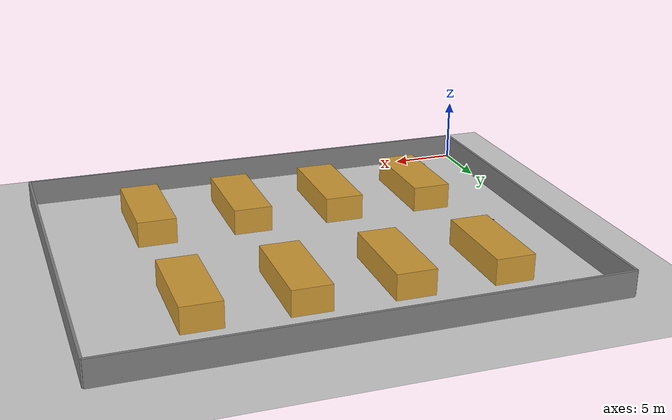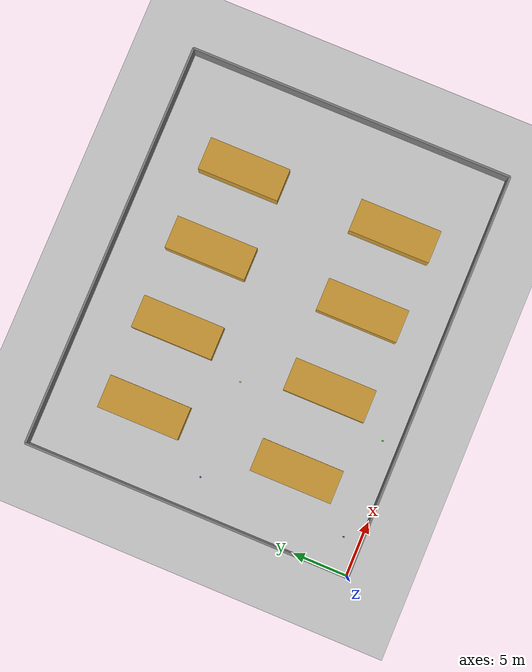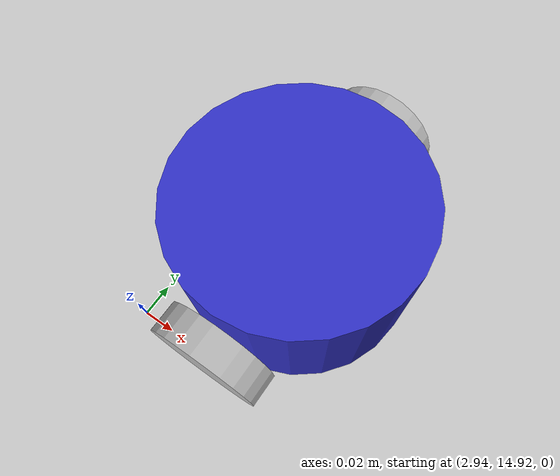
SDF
<?xml version="1.0" ?>
<sdf version="1.8">
  <world name="warehouse">
    <physics name="1ms" type="ignored">
      <max_step_size>0.001</max_step_size>
      <real_time_factor>1.0</real_time_factor>
    </physics>

    <plugin filename="ignition-gazebo-physics-system" name="ignition::gazebo::systems::Physics"/>
    <plugin filename="ignition-gazebo-scene-broadcaster-system" name="ignition::gazebo::systems::SceneBroadcaster"/>
    <plugin filename="ignition-gazebo-user-commands-system" name="ignition::gazebo::systems::UserCommands"/>

    <light type="directional" name="sun">
      <cast_shadows>true</cast_shadows>
      <pose>0 0 10 0 0 0</pose>
      <diffuse>0.8 0.8 0.8 1</diffuse>
      <specular>0.2 0.2 0.2 1</specular>
      <direction>-0.5 0.1 -0.9</direction>
    </light>

    <model name="ground_plane">
      <static>true</static>
      <link name="link">
        <collision name="collision">
          <geometry><plane><normal>0 0 1</normal><size>100 100</size></plane></geometry>
        </collision>
        <visual name="visual">
          <geometry><plane><normal>0 0 1</normal><size>100 100</size></plane></geometry>
          <material>
            <ambient>0.8 0.8 0.8 1</ambient>
            <diffuse>0.8 0.8 0.8 1</diffuse>
          </material>
        </visual>
      </link>
    </model>

    <!-- Warehouse walls (37.5m x 30m) -->
    <model name="wall_north">
      <static>true</static>
      <pose>18.75 30 1 0 0 0</pose>
      <link name="link">
        <collision name="collision"><geometry><box><size>37.5 0.2 2</size></box></geometry></collision>
        <visual name="visual"><geometry><box><size>37.5 0.2 2</size></box></geometry>
          <material><ambient>0.5 0.5 0.5 1</ambient></material></visual>
      </link>
    </model>

    <model name="wall_south">
      <static>true</static>
      <pose>18.75 0 1 0 0 0</pose>
      <link name="link">
        <collision name="collision"><geometry><box><size>37.5 0.2 2</size></box></geometry></collision>
        <visual name="visual"><geometry><box><size>37.5 0.2 2</size></box></geometry>
          <material><ambient>0.5 0.5 0.5 1</ambient></material></visual>
      </link>
    </model>

    <model name="wall_west">
      <static>true</static>
      <pose>0 15 1 0 0 0</pose>
      <link name="link">
        <collision name="collision"><geometry><box><size>0.2 30 2</size></box></geometry></collision>
        <visual name="visual"><geometry><box><size>0.2 30 2</size></box></geometry>
          <material><ambient>0.5 0.5 0.5 1</ambient></material></visual>
      </link>
    </model>

    <model name="wall_east">
      <static>true</static>
      <pose>37.5 15 1 0 0 0</pose>
      <link name="link">
        <collision name="collision"><geometry><box><size>0.2 30 2</size></box></geometry></collision>
        <visual name="visual"><geometry><box><size>0.2 30 2</size></box></geometry>
          <material><ambient>0.5 0.5 0.5 1</ambient></material></visual>
      </link>
    </model>

    <!-- Shelf Row 1 (bottom) y: 4.5 to 10.5 -->
    <model name="shelf_1a"><static>true</static><pose>6.75 7.5 1 0 0 0</pose>
      <link name="link"><collision name="c"><geometry><box><size>3 7.5 2</size></box></geometry></collision>
      <visual name="v"><geometry><box><size>3 7.5 2</size></box></geometry>
        <material><ambient>0.8 0.6 0.2 1</ambient><diffuse>0.8 0.6 0.2 1</diffuse></material></visual></link></model>

    <model name="shelf_1b"><static>true</static><pose>14.25 7.5 1 0 0 0</pose>
      <link name="link"><collision name="c"><geometry><box><size>3 7.5 2</size></box></geometry></collision>
      <visual name="v"><geometry><box><size>3 7.5 2</size></box></geometry>
        <material><ambient>0.8 0.6 0.2 1</ambient><diffuse>0.8 0.6 0.2 1</diffuse></material></visual></link></model>

    <model name="shelf_1c"><static>true</static><pose>21.75 7.5 1 0 0 0</pose>
      <link name="link"><collision name="c"><geometry><box><size>3 7.5 2</size></box></geometry></collision>
      <visual name="v"><geometry><box><size>3 7.5 2</size></box></geometry>
        <material><ambient>0.8 0.6 0.2 1</ambient><diffuse>0.8 0.6 0.2 1</diffuse></material></visual></link></model>

    <model name="shelf_1d"><static>true</static><pose>29.25 7.5 1 0 0 0</pose>
      <link name="link"><collision name="c"><geometry><box><size>3 7.5 2</size></box></geometry></collision>
      <visual name="v"><geometry><box><size>3 7.5 2</size></box></geometry>
        <material><ambient>0.8 0.6 0.2 1</ambient><diffuse>0.8 0.6 0.2 1</diffuse></material></visual></link></model>

    <!-- Shelf Row 2 (top) y: 18 to 25.5 -->
    <model name="shelf_2a"><static>true</static><pose>6.75 21.75 1 0 0 0</pose>
      <link name="link"><collision name="c"><geometry><box><size>3 7.5 2</size></box></geometry></collision>
      <visual name="v"><geometry><box><size>3 7.5 2</size></box></geometry>
        <material><ambient>0.8 0.6 0.2 1</ambient><diffuse>0.8 0.6 0.2 1</diffuse></material></visual></link></model>

    <model name="shelf_2b"><static>true</static><pose>14.25 21.75 1 0 0 0</pose>
      <link name="link"><collision name="c"><geometry><box><size>3 7.5 2</size></box></geometry></collision>
      <visual name="v"><geometry><box><size>3 7.5 2</size></box></geometry>
        <material><ambient>0.8 0.6 0.2 1</ambient><diffuse>0.8 0.6 0.2 1</diffuse></material></visual></link></model>

    <model name="shelf_2c"><static>true</static><pose>21.75 21.75 1 0 0 0</pose>
      <link name="link"><collision name="c"><geometry><box><size>3 7.5 2</size></box></geometry></collision>
      <visual name="v"><geometry><box><size>3 7.5 2</size></box></geometry>
        <material><ambient>0.8 0.6 0.2 1</ambient><diffuse>0.8 0.6 0.2 1</diffuse></material></visual></link></model>

    <model name="shelf_2d"><static>true</static><pose>29.25 21.75 1 0 0 0</pose>
      <link name="link"><collision name="c"><geometry><box><size>3 7.5 2</size></box></geometry></collision>
      <visual name="v"><geometry><box><size>3 7.5 2</size></box></geometry>
        <material><ambient>0.8 0.6 0.2 1</ambient><diffuse>0.8 0.6 0.2 1</diffuse></material></visual></link></model>

    <!-- Robot 0 (red) -->
    <model name="robot_0">
      <pose>3.0 1.5 0.01 0 0 0</pose>
      <link name="base_footprint"/>
      <link name="base_link">
        <pose relative_to="base_footprint">0 0 0.01 0 0 0</pose>
        <inertial><mass>1.0</mass>
          <inertia><ixx>0.001</ixx><iyy>0.001</iyy><izz>0.001</izz></inertia></inertial>
        <collision name="collision"><geometry><cylinder><radius>0.07</radius><length>0.14</length></cylinder></geometry></collision>
        <visual name="visual"><geometry><cylinder><radius>0.07</radius><length>0.14</length></cylinder></geometry>
          <material><ambient>0.8 0.2 0.2 1</ambient><diffuse>0.8 0.2 0.2 1</diffuse></material></visual>
      </link>
      <link name="left_wheel">
        <pose relative_to="base_link">0 0.08 0.023 -1.5708 0 0</pose>
        <inertial><mass>0.03</mass>
          <inertia><ixx>0.00001</ixx><iyy>0.00001</iyy><izz>0.00001</izz></inertia></inertial>
        <collision name="collision"><geometry><cylinder><radius>0.033</radius><length>0.018</length></cylinder></geometry>
          <surface><friction><ode><mu>1.0</mu><mu2>1.0</mu2></ode></friction></surface></collision>
        <visual name="visual"><geometry><cylinder><radius>0.033</radius><length>0.018</length></cylinder></geometry>
          <material><ambient>0.1 0.1 0.1 1</ambient></material></visual>
      </link>
      <link name="right_wheel">
        <pose relative_to="base_link">0 -0.08 0.023 -1.5708 0 0</pose>
        <inertial><mass>0.03</mass>
          <inertia><ixx>0.00001</ixx><iyy>0.00001</iyy><izz>0.00001</izz></inertia></inertial>
        <collision name="collision"><geometry><cylinder><radius>0.033</radius><length>0.018</length></cylinder></geometry>
          <surface><friction><ode><mu>1.0</mu><mu2>1.0</mu2></ode></friction></surface></collision>
        <visual name="visual"><geometry><cylinder><radius>0.033</radius><length>0.018</length></cylinder></geometry>
          <material><ambient>0.1 0.1 0.1 1</ambient></material></visual>
      </link>
      <link name="caster">
        <pose relative_to="base_link">-0.06 0 -0.005 0 0 0</pose>
        <inertial><mass>0.005</mass>
          <inertia><ixx>0.000001</ixx><iyy>0.000001</iyy><izz>0.000001</izz></inertia></inertial>
        <collision name="collision"><geometry><sphere><radius>0.005</radius></sphere></geometry>
          <surface><friction><ode><mu>0.0</mu><mu2>0.0</mu2></ode></friction></surface></collision>
      </link>
      <joint name="base_joint" type="fixed"><parent>base_footprint</parent><child>base_link</child></joint>
      <joint name="left_wheel_joint" type="revolute">
        <parent>base_link</parent><child>left_wheel</child><axis><xyz>0 0 1</xyz></axis></joint>
      <joint name="right_wheel_joint" type="revolute">
        <parent>base_link</parent><child>right_wheel</child><axis><xyz>0 0 1</xyz></axis></joint>
      <joint name="caster_joint" type="ball"><parent>base_link</parent><child>caster</child></joint>
      <plugin filename="ignition-gazebo-diff-drive-system" name="ignition::gazebo::systems::DiffDrive">
        <left_joint>left_wheel_joint</left_joint>
        <right_joint>right_wheel_joint</right_joint>
        <wheel_separation>0.16</wheel_separation>
        <wheel_radius>0.033</wheel_radius>
        <topic>/robot_0/cmd_vel</topic>
        <odom_topic>/robot_0/odom</odom_topic>
        <frame_id>robot_0/odom</frame_id>
        <child_frame_id>robot_0/base_footprint</child_frame_id>
        <odom_publish_frequency>30</odom_publish_frequency>
      </plugin>
    </model>

    <!-- Robot 1 (green) -->
    <model name="robot_1">
      <pose>12.0 1.5 0.01 0 0 0</pose>
      <link name="base_footprint"/>
      <link name="base_link">
        <pose relative_to="base_footprint">0 0 0.01 0 0 0</pose>
        <inertial><mass>1.0</mass>
          <inertia><ixx>0.001</ixx><iyy>0.001</iyy><izz>0.001</izz></inertia></inertial>
        <collision name="collision"><geometry><cylinder><radius>0.07</radius><length>0.14</length></cylinder></geometry></collision>
        <visual name="visual"><geometry><cylinder><radius>0.07</radius><length>0.14</length></cylinder></geometry>
          <material><ambient>0.2 0.8 0.2 1</ambient><diffuse>0.2 0.8 0.2 1</diffuse></material></visual>
      </link>
      <link name="left_wheel">
        <pose relative_to="base_link">0 0.08 0.023 -1.5708 0 0</pose>
        <inertial><mass>0.03</mass>
          <inertia><ixx>0.00001</ixx><iyy>0.00001</iyy><izz>0.00001</izz></inertia></inertial>
        <collision name="collision"><geometry><cylinder><radius>0.033</radius><length>0.018</length></cylinder></geometry>
          <surface><friction><ode><mu>1.0</mu><mu2>1.0</mu2></ode></friction></surface></collision>
        <visual name="visual"><geometry><cylinder><radius>0.033</radius><length>0.018</length></cylinder></geometry></visual>
      </link>
      <link name="right_wheel">
        <pose relative_to="base_link">0 -0.08 0.023 -1.5708 0 0</pose>
        <inertial><mass>0.03</mass>
          <inertia><ixx>0.00001</ixx><iyy>0.00001</iyy><izz>0.00001</izz></inertia></inertial>
        <collision name="collision"><geometry><cylinder><radius>0.033</radius><length>0.018</length></cylinder></geometry>
          <surface><friction><ode><mu>1.0</mu><mu2>1.0</mu2></ode></friction></surface></collision>
        <visual name="visual"><geometry><cylinder><radius>0.033</radius><length>0.018</length></cylinder></geometry></visual>
      </link>
      <link name="caster">
        <pose relative_to="base_link">-0.06 0 -0.005 0 0 0</pose>
        <inertial><mass>0.005</mass>
          <inertia><ixx>0.000001</ixx><iyy>0.000001</iyy><izz>0.000001</izz></inertia></inertial>
        <collision name="collision"><geometry><sphere><radius>0.005</radius></sphere></geometry>
          <surface><friction><ode><mu>0.0</mu><mu2>0.0</mu2></ode></friction></surface></collision>
      </link>
      <joint name="base_joint" type="fixed"><parent>base_footprint</parent><child>base_link</child></joint>
      <joint name="left_wheel_joint" type="revolute">
        <parent>base_link</parent><child>left_wheel</child><axis><xyz>0 0 1</xyz></axis></joint>
      <joint name="right_wheel_joint" type="revolute">
        <parent>base_link</parent><child>right_wheel</child><axis><xyz>0 0 1</xyz></axis></joint>
      <joint name="caster_joint" type="ball"><parent>base_link</parent><child>caster</child></joint>
      <plugin filename="ignition-gazebo-diff-drive-system" name="ignition::gazebo::systems::DiffDrive">
        <left_joint>left_wheel_joint</left_joint>
        <right_joint>right_wheel_joint</right_joint>
        <wheel_separation>0.16</wheel_separation>
        <wheel_radius>0.033</wheel_radius>
        <topic>/robot_1/cmd_vel</topic>
        <odom_topic>/robot_1/odom</odom_topic>
        <frame_id>robot_1/odom</frame_id>
        <child_frame_id>robot_1/base_footprint</child_frame_id>
        <odom_publish_frequency>30</odom_publish_frequency>
      </plugin>
    </model>

    <!-- Robot 2 (blue) -->
    <model name="robot_2">
      <pose>3.0 15.0 0.01 0 0 0</pose>
      <link name="base_footprint"/>
      <link name="base_link">
        <pose relative_to="base_footprint">0 0 0.01 0 0 0</pose>
        <inertial><mass>1.0</mass>
          <inertia><ixx>0.001</ixx><iyy>0.001</iyy><izz>0.001</izz></inertia></inertial>
        <collision name="collision"><geometry><cylinder><radius>0.07</radius><length>0.14</length></cylinder></geometry></collision>
        <visual name="visual"><geometry><cylinder><radius>0.07</radius><length>0.14</length></cylinder></geometry>
          <material><ambient>0.2 0.2 0.8 1</ambient><diffuse>0.2 0.2 0.8 1</diffuse></material></visual>
      </link>
      <link name="left_wheel">
        <pose relative_to="base_link">0 0.08 0.023 -1.5708 0 0</pose>
        <inertial><mass>0.03</mass>
          <inertia><ixx>0.00001</ixx><iyy>0.00001</iyy><izz>0.00001</izz></inertia></inertial>
        <collision name="collision"><geometry><cylinder><radius>0.033</radius><length>0.018</length></cylinder></geometry>
          <surface><friction><ode><mu>1.0</mu><mu2>1.0</mu2></ode></friction></surface></collision>
        <visual name="visual"><geometry><cylinder><radius>0.033</radius><length>0.018</length></cylinder></geometry></visual>
      </link>
      <link name="right_wheel">
        <pose relative_to="base_link">0 -0.08 0.023 -1.5708 0 0</pose>
        <inertial><mass>0.03</mass>
          <inertia><ixx>0.00001</ixx><iyy>0.00001</iyy><izz>0.00001</izz></inertia></inertial>
        <collision name="collision"><geometry><cylinder><radius>0.033</radius><length>0.018</length></cylinder></geometry>
          <surface><friction><ode><mu>1.0</mu><mu2>1.0</mu2></ode></friction></surface></collision>
        <visual name="visual"><geometry><cylinder><radius>0.033</radius><length>0.018</length></cylinder></geometry></visual>
      </link>
      <link name="caster">
        <pose relative_to="base_link">-0.06 0 -0.005 0 0 0</pose>
        <inertial><mass>0.005</mass>
          <inertia><ixx>0.000001</ixx><iyy>0.000001</iyy><izz>0.000001</izz></inertia></inertial>
        <collision name="collision"><geometry><sphere><radius>0.005</radius></sphere></geometry>
          <surface><friction><ode><mu>0.0</mu><mu2>0.0</mu2></ode></friction></surface></collision>
      </link>
      <joint name="base_joint" type="fixed"><parent>base_footprint</parent><child>base_link</child></joint>
      <joint name="left_wheel_joint" type="revolute">
        <parent>base_link</parent><child>left_wheel</child><axis><xyz>0 0 1</xyz></axis></joint>
      <joint name="right_wheel_joint" type="revolute">
        <parent>base_link</parent><child>right_wheel</child><axis><xyz>0 0 1</xyz></axis></joint>
      <joint name="caster_joint" type="ball"><parent>base_link</parent><child>caster</child></joint>
      <plugin filename="ignition-gazebo-diff-drive-system" name="ignition::gazebo::systems::DiffDrive">
        <left_joint>left_wheel_joint</left_joint>
        <right_joint>right_wheel_joint</right_joint>
        <wheel_separation>0.16</wheel_separation>
        <wheel_radius>0.033</wheel_radius>
        <topic>/robot_2/cmd_vel</topic>
        <odom_topic>/robot_2/odom</odom_topic>
        <frame_id>robot_2/odom</frame_id>
        <child_frame_id>robot_2/base_footprint</child_frame_id>
        <odom_publish_frequency>30</odom_publish_frequency>
      </plugin>
    </model>

    <!-- Robot 3 (yellow) -->
    <model name="robot_3">
      <pose>12.0 15.0 0.01 0 0 0</pose>
      <link name="base_footprint"/>
      <link name="base_link">
        <pose relative_to="base_footprint">0 0 0.01 0 0 0</pose>
        <inertial><mass>1.0</mass>
          <inertia><ixx>0.001</ixx><iyy>0.001</iyy><izz>0.001</izz></inertia></inertial>
        <collision name="collision"><geometry><cylinder><radius>0.07</radius><length>0.14</length></cylinder></geometry></collision>
        <visual name="visual"><geometry><cylinder><radius>0.07</radius><length>0.14</length></cylinder></geometry>
          <material><ambient>0.8 0.8 0.2 1</ambient><diffuse>0.8 0.8 0.2 1</diffuse></material></visual>
      </link>
      <link name="left_wheel">
        <pose relative_to="base_link">0 0.08 0.023 -1.5708 0 0</pose>
        <inertial><mass>0.03</mass>
          <inertia><ixx>0.00001</ixx><iyy>0.00001</iyy><izz>0.00001</izz></inertia></inertial>
        <collision name="collision"><geometry><cylinder><radius>0.033</radius><length>0.018</length></cylinder></geometry>
          <surface><friction><ode><mu>1.0</mu><mu2>1.0</mu2></ode></friction></surface></collision>
        <visual name="visual"><geometry><cylinder><radius>0.033</radius><length>0.018</length></cylinder></geometry></visual>
      </link>
      <link name="right_wheel">
        <pose relative_to="base_link">0 -0.08 0.023 -1.5708 0 0</pose>
        <inertial><mass>0.03</mass>
          <inertia><ixx>0.00001</ixx><iyy>0.00001</iyy><izz>0.00001</izz></inertia></inertial>
        <collision name="collision"><geometry><cylinder><radius>0.033</radius><length>0.018</length></cylinder></geometry>
          <surface><friction><ode><mu>1.0</mu><mu2>1.0</mu2></ode></friction></surface></collision>
        <visual name="visual"><geometry><cylinder><radius>0.033</radius><length>0.018</length></cylinder></geometry></visual>
      </link>
      <link name="caster">
        <pose relative_to="base_link">-0.06 0 -0.005 0 0 0</pose>
        <inertial><mass>0.005</mass>
          <inertia><ixx>0.000001</ixx><iyy>0.000001</iyy><izz>0.000001</izz></inertia></inertial>
        <collision name="collision"><geometry><sphere><radius>0.005</radius></sphere></geometry>
          <surface><friction><ode><mu>0.0</mu><mu2>0.0</mu2></ode></friction></surface></collision>
      </link>
      <joint name="base_joint" type="fixed"><parent>base_footprint</parent><child>base_link</child></joint>
      <joint name="left_wheel_joint" type="revolute">
        <parent>base_link</parent><child>left_wheel</child><axis><xyz>0 0 1</xyz></axis></joint>
      <joint name="right_wheel_joint" type="revolute">
        <parent>base_link</parent><child>right_wheel</child><axis><xyz>0 0 1</xyz></axis></joint>
      <joint name="caster_joint" type="ball"><parent>base_link</parent><child>caster</child></joint>
      <plugin filename="ignition-gazebo-diff-drive-system" name="ignition::gazebo::systems::DiffDrive">
        <left_joint>left_wheel_joint</left_joint>
        <right_joint>right_wheel_joint</right_joint>
        <wheel_separation>0.16</wheel_separation>
        <wheel_radius>0.033</wheel_radius>
        <topic>/robot_3/cmd_vel</topic>
        <odom_topic>/robot_3/odom</odom_topic>
        <frame_id>robot_3/odom</frame_id>
        <child_frame_id>robot_3/base_footprint</child_frame_id>
        <odom_publish_frequency>30</odom_publish_frequency>
      </plugin>
    </model>

  </world>
</sdf>
